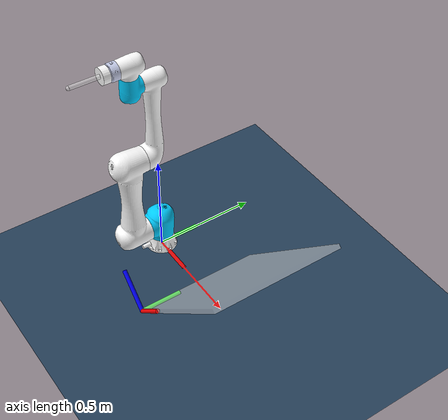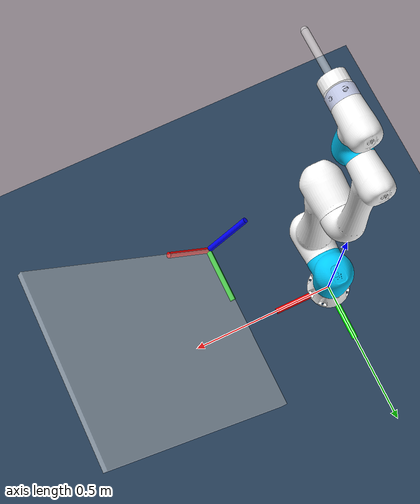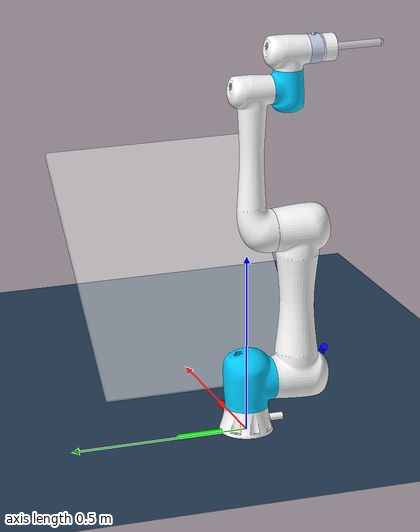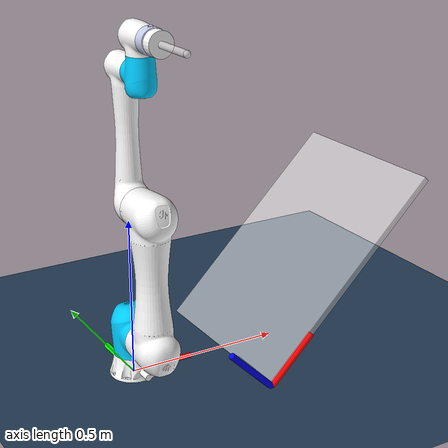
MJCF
<mujoco model="jk5">
    <include file="basic_env.xml"/>
    <include file="robot_stick_lower.xml"/>
    <worldbody>
<!--desk1-->
<!--desk2-->
<!--desk3-->
        <body name="table" pos="0.6 0 0.28284271247461906" quat="0.9238795 0 -0.3826834 0">
            <geom size=".4 .3 .01" pos ="0 0 0" type="box" solimp="0.1 0.3 0.001 0.5 2" solref="-2000.0 -0.1"
                  rgba="1 1 1 0.5"  group="1" condim="4"/>
            <inertial pos="0 0 0" mass="1000" diaginertia="0 0 0" />
        </body>
        <site name="t_x" fromto="0.31715728 -0.3 0 0.45857864 -0.3 0.14142135" rgba="1 0 0 1" size="0.01 0.1" type="cylinder"/>
        <site name="t_y" fromto="0.31715728 -0.3 0 0.31715728 -0.1 0" rgba="0 1 0 1" size="0.01 0.1" type="cylinder"/>
        <site name="t_z" fromto="0.31715728 -0.3 0 0.17573593 -0.3 0.14142135" rgba="0 0 1 1" size="0.01 0.1" type="cylinder"/>
    </worldbody>
</mujoco>

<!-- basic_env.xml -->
<mujoco model="basic setting">
    <compiler angle="radian" meshdir="../meshes/" inertiafromgeom="false" coordinate="local"/>
    <size njmax="5000" nconmax="1000"/>
    <option timestep="2e-3">
        <flag contact="enable" warmstart="disable" frictionloss="enable"/>
    </option>
    <default>
        <geom solref=".002 1" friction="1 0.005 0.0001" condim="4"/>
    </default>
    <visual>
        <map force="10" torque="1"/>
        <rgba contactforce="1 0 0 1" contacttorque="0 1 0 1" contactfriction="0 0 1 1"/>
    </visual>
    <asset>
        <material name="common_mat" specular="0" shininess="0.5" reflectance="0" rgba="0.93 0.93 0.93 1"/>
        <material name='floor_mat' texture="floor_tex" shininess="0.8" texrepeat="10 10" specular="0.7" reflectance="0."/>
        <texture type="skybox" builtin="gradient" rgb1="1 1 1" rgb2="1 1 1" width="512" height="512"/>
        <texture name="floor_tex" type="2d" builtin="checker" rgb1=".2 .3 .4" rgb2=".1 .2 .3" width="100" height="100"/>
        <hfield name="sin_floor" file="sin floor.png" nrow="0" ncol="0" size="0.25 0.2 0.02 0.01"/>
    </asset>
    <worldbody>
        <light name="light" mode="fixed" directional="true" pos="1 0 3"/>
        <geom name='floor' material="floor_mat" pos='0 0 0' size='2.5 2.5 0.1' type='plane'/>
        <site name="w_x" pos="0.1 0 0" rgba="1 0 0 1" size="0.01 0.1" type="cylinder" quat="0 0.7071068 0 0.7071068"/>
        <site name="w_y" pos="0 0.1 0" rgba="0 1 0 1" size="0.01 0.1" type="cylinder" quat="0.7071068 -0.7071068 0 0"/>
        <site name="w_z" pos="0 0 0.1" rgba="0 0 1 1" size="0.01 0.1" type="cylinder" quat="1 0 0 0"/>
    </worldbody>
</mujoco>

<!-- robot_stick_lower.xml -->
<!--jk5+连杆环境，用于表面接触任务-->
<mujoco model="jk5">
    <asset>
        <mesh name="base_link" file="base_link.STL" />
        <mesh name="link1" file="link1.STL" />
        <mesh name="link2" file="link2.STL" />
        <mesh name="link3" file="link3.STL" />
        <mesh name="link4" file="link4.STL" />
        <mesh name="link5" file="link5.STL" />
        <mesh name="link6" file="link6.STL" />
    </asset>
    <worldbody>
        <body name="jk5" pos="0 0 0">
            <body name="base_link" pos="0 0 0">
                <geom name="base_link_geom" type="mesh" contype="0" conaffinity="0" rgba="1 1 1 1" mesh="base_link"/>
                <body name="link1" pos="0 0 0.069">
                    <geom name="link1_geom" type="mesh" contype="0" conaffinity="0" rgba="0 0.8 1 1" mesh="link1"/>
                    <joint name="joint1" pos="0 0 0" axis="0 0 1" limited="true" range="-3.14 3.14"/>
                    <inertial pos="-3.8005e-05 -0.0024889 0.054452" quat="0.696512 0.0244353 -0.0262529 0.716648"
                              mass="4.27" diaginertia="0.0214324 0.0213196 0.00795099"/>
                    <body name="link2" pos="0 0 0.073" quat="0.707106781 0.707106781 0 0">
                        <geom name="link2_geom" type="mesh" contype="0" conaffinity="0" rgba="1 1 1 1" mesh="link2"/>
                        <joint name="joint2" pos="0 0 0" axis="0 0 1" limited="true" range="-3.14 3.14"/>
                        <inertial pos="0 0.21252 0.12053" quat="0.414451 0.57284 0.573072 0.414334"
                                  mass="10.1" diaginertia="1.01715 0.953511 0.0834946"/>
                        <body name="link3" pos="0 0.425 0" quat="0.707106781 0 0 0.707106781">
                            <geom name="link3_geom" type="mesh" contype="0" conaffinity="0" rgba="1 1 1 1" mesh="link3"/>
                            <joint name="joint3" pos="0 0 0" axis="0 0 1" limited="true" range="-3.14 3.14"/>
                            <inertial pos="0.27205 1.9634e-05 0.023591" quat="0.482588 0.516912 0.516005 0.483374"
                                      mass="2.61" diaginertia="0.262358 0.261811 0.0036704"/>
                            <body name="link4" pos="0.395 0 0">
                                <geom name="link4_geom" type="mesh" contype="0" conaffinity="0" rgba="0 0.8 1 1" mesh="link4"/>
                                <joint name="joint4" pos="0 0 0" axis="0 0 1" limited="true" range="-3.14 3.14"/>
                                <inertial pos="3.0707e-05 -0.015152 0.11185" quat="0.997531 0.0701668 0.000322345 -0.00295604"
                                          mass="1.45" diaginertia="0.0201018 0.0196889 0.00158379"/>
                                <body name="link5" pos="0 0 0.1135" quat="0.5 -0.5 0.5 -0.5">
                                    <geom name="link5_geom" type="mesh" contype="0" conaffinity="0" rgba="1 1 1 1" mesh="link5"/>
                                    <joint name="joint5" pos="0 0 0" axis="0 0 1" limited="true" range="-3.14 3.14"/>
                                    <inertial pos="-3.0707e-05 0.015152 0.099848"  quat="0.704002 -0.0654372 0.0666836 0.704026"
                                              mass="1.45" diaginertia="0.0057004 0.0057004 0.0057004"/>
                                    <body name="link6" pos="0 0 0.1015" quat="0.707106781 0.707106781 0 0">
                                        <geom name="link6_geom" type="mesh" contype="0" conaffinity="0" rgba="0.79216 0.81961 0.93333 1" mesh="link6"/>
                                        <joint name="joint6" pos="0 0 0" axis="0 0 1" limited="true" range="-3.14 3.14"/>
                                        <inertial pos="0 0.00058691 0.072051" quat="0.999992 -0.00407703 0 0"
                                                  mass="0.21" diaginertia="0.00128044 0.00120857 0.000194485"/>
                                        <!--机器人末端位置，re for robot end-->
                                        <site name="re" pos="0 0 0" rgba="1 0 0 0" size="0.03 0.03 0.03" type="box"/>
                                        <!--执行器-->
                                        <body name="ee_link" pos="0 0 0.094">
                                            <geom name="ft_sensor_geom" type="cylinder" rgba="1 1 1 1" fromto="0 0 0  0 0 0.034" size="0.0375"/>
                                            <geom name="stick_geom" type="cylinder" rgba="1 1 1 0.5" pos="0 0 0.0845" size="0.01 0.0845"/>
                                            <inertial pos="0 0 0.015" mass="0.424"
                                                      diaginertia="0.00019875 0.00019875 0.00019080"/>
                                            <!--执行器末端位置-->
                                            <site name="ee" pos="0 0 0.169" rgba="1 0 0 0" size="0.01 0.01 0.01" type="sphere"/>
                                            <!--ee_link与link6，力传感器的力-->
                                            <site name="nft_sensor" pos="0 0 0" rgba="1 0 0 0" size="0.01 0.01 0.01" type="sphere"/>
                                            <!--tip与ee_link，接触点的力，专门定义dummy_body-->
                                            <body name="dummy_body" pos="0 0 0.169">
                                                <geom name="dummy_body_geom" type="sphere" pos="0 0 0" rgba="1 1 1 0.5" size="0.01 0.01 0.01" friction="0 0 0"/>
                                                <inertial pos="0 0 0" mass="0.000000001" diaginertia="0.000000001 0.000000001 0.000000001"/>
                                                <site name="contact_sensor" pos="0 0 0" rgba="1 0 0 0" size="0.01 0.01 0.01" type="sphere"/>
                                            </body>
                                        </body>
                                    </body>
                                </body>
                            </body>
                        </body>
                    </body>
                </body>
            </body>
        </body>
    </worldbody>
    <actuator>
        <motor name='motor1' ctrllimited="true" ctrlrange="-500 500" joint='joint1' gear="1"/>
        <motor name='motor2' ctrllimited="true" ctrlrange="-500 500" joint='joint2' gear="1"/>
        <motor name='motor3' ctrllimited="true" ctrlrange="-500 500" joint='joint3' gear="1"/>
        <motor name='motor4' ctrllimited="true" ctrlrange="-500 500" joint='joint4' gear="1"/>
        <motor name='motor5' ctrllimited="true" ctrlrange="-500 500" joint='joint5' gear="1"/>
        <motor name='motor6' ctrllimited="true" ctrlrange="-500 500" joint='joint6' gear="1"/>
    </actuator>
    <sensor>
        <!--检测接触点的力与力矩-->
        <force name="contact_force" site="contact_sensor"/>
        <torque name="contact_torque" site="contact_sensor"/>
        <touch name="contact_touch" site="contact_sensor"/>
        <!--检测nft传感器的力与力矩-->
        <force name="nft_force" site="nft_sensor"/>
        <torque name="nft_torque" site="nft_sensor"/>
    </sensor>
</mujoco>
